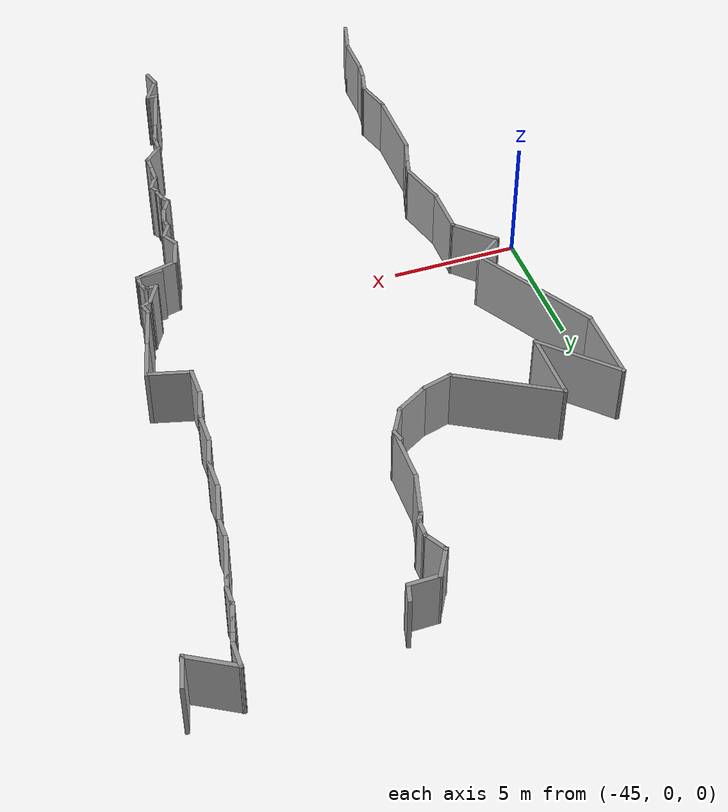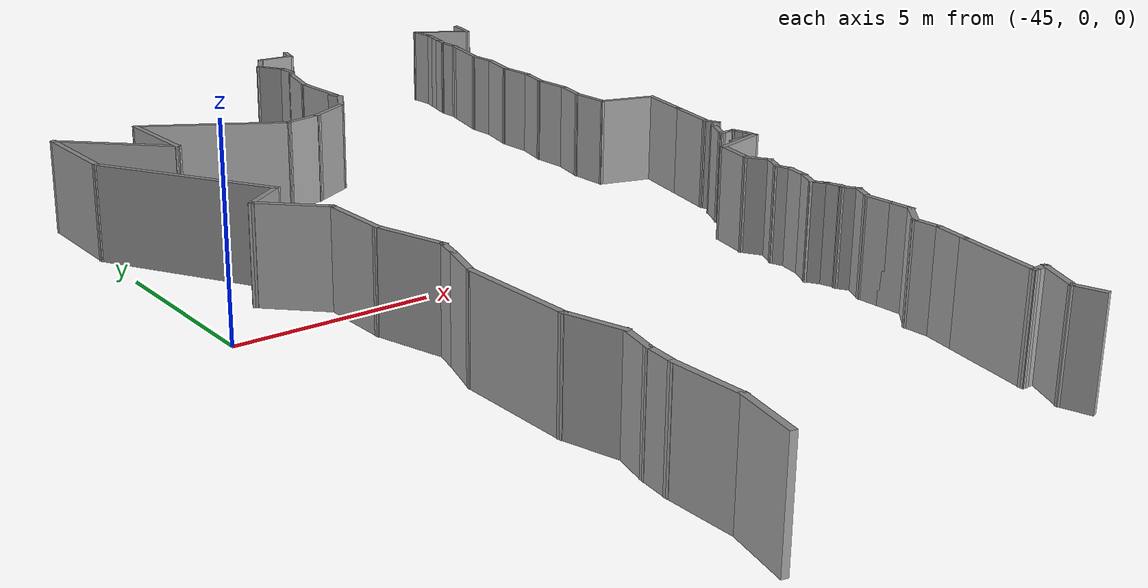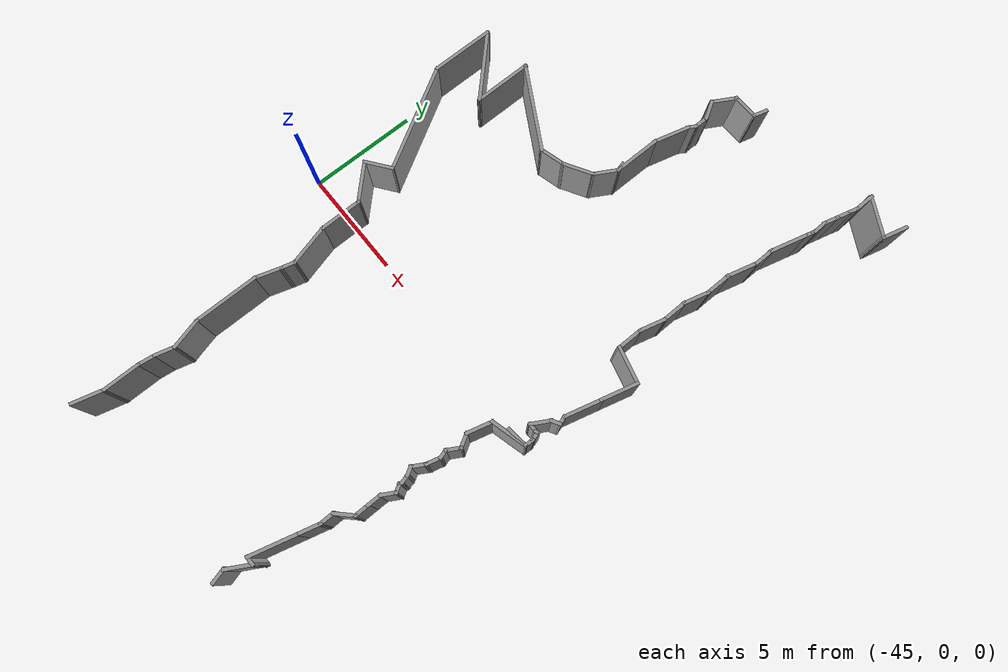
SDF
<sdf version="1.7">
 <model name="office_track1">
  <pose>2.3626 4.43866 0 0 -0 0</pose>
  <link name="Wall_0">
   <collision name="Wall_0_Collision">
    <geometry><box><size>1 0.15 2.5</size></box></geometry>
    <pose>0 0 1.25 0 -0 0</pose>
   </collision>
   <visual name="Wall_0_Visual">
    <pose>0 0 1.25 0 -0 0</pose>
    <geometry><box><size>1 0.15 2.5</size></box></geometry>
    <material>
     <script><uri>file://media/materials/scripts/gazebo.material</uri><name>Gazebo/Grey</name></script>
     <ambient>1 1 1 1</ambient>
    </material>
    <meta><layer>0</layer></meta>
   </visual>
   <pose>-30.9948 12.4778 0 0 -0 -1.5708</pose>
  </link>
  <link name="Wall_10">
   <collision name="Wall_10_Collision">
    <geometry><box><size>1.25 0.15 2.5</size></box></geometry>
    <pose>0 0 1.25 0 -0 0</pose>
   </collision>
   <visual name="Wall_10_Visual">
    <pose>0 0 1.25 0 -0 0</pose>
    <geometry><box><size>1.25 0.15 2.5</size></box></geometry>
    <material>
     <script><uri>file://media/materials/scripts/gazebo.material</uri><name>Gazebo/Grey</name></script>
     <ambient>1 1 1 1</ambient>
    </material>
    <meta><layer>0</layer></meta>
   </visual>
   <pose>-29.2503 12.509 0 0 -0 1.309</pose>
  </link>
  <link name="Wall_12">
   <collision name="Wall_12_Collision">
    <geometry><box><size>1.75 0.15 2.5</size></box></geometry>
    <pose>0 0 1.25 0 -0 0</pose>
   </collision>
   <visual name="Wall_12_Visual">
    <pose>0 0 1.25 0 -0 0</pose>
    <geometry><box><size>1.75 0.15 2.5</size></box></geometry>
    <material>
     <script><uri>file://media/materials/scripts/gazebo.material</uri><name>Gazebo/Grey</name></script>
     <ambient>1 1 1 1</ambient>
    </material>
    <meta><layer>0</layer></meta>
   </visual>
   <pose>-31.7195 8.74818 0 0 -0 -1.8326</pose>
  </link>
  <link name="Wall_2">
   <collision name="Wall_2_Collision">
    <geometry><box><size>0.5 0.15 2.5</size></box></geometry>
    <pose>0 0 1.25 0 -0 0</pose>
   </collision>
   <visual name="Wall_2_Visual">
    <pose>0 0 1.25 0 -0 0</pose>
    <geometry><box><size>0.5 0.15 2.5</size></box></geometry>
    <material>
     <script><uri>file://media/materials/scripts/gazebo.material</uri><name>Gazebo/Grey</name></script>
     <ambient>1 1 1 1</ambient>
    </material>
    <meta><layer>0</layer></meta>
   </visual>
   <pose>-31.0401 11.8837 0 0 -0 -1.8326</pose>
  </link>
  <link name="Wall_22">
   <collision name="Wall_22_Collision">
    <geometry><box><size>1 0.15 2.5</size></box></geometry>
    <pose>0 0 1.25 0 -0 0</pose>
   </collision>
   <visual name="Wall_22_Visual">
    <pose>0 0 1.25 0 -0 0</pose>
    <geometry><box><size>1 0.15 2.5</size></box></geometry>
    <material>
     <script><uri>file://media/materials/scripts/gazebo.material</uri><name>Gazebo/Grey</name></script>
     <ambient>1 1 1 1</ambient>
    </material>
    <meta><layer>0</layer></meta>
   </visual>
   <pose>-31.9265 7.55044 0 0 -0 -1.5708</pose>
  </link>
  <link name="Wall_23">
   <collision name="Wall_23_Collision">
    <geometry><box><size>1.5 0.15 2.5</size></box></geometry>
    <pose>0 0 1.25 0 -0 0</pose>
   </collision>
   <visual name="Wall_23_Visual">
    <pose>0 0 1.25 0 -0 0</pose>
    <geometry><box><size>1.5 0.15 2.5</size></box></geometry>
    <material>
     <script><uri>file://media/materials/scripts/gazebo.material</uri><name>Gazebo/Grey</name></script>
     <ambient>1 1 1 1</ambient>
    </material>
    <meta><layer>0</layer></meta>
   </visual>
   <pose>-32.1012 6.47344 0 0 -0 -1.8326</pose>
  </link>
  <link name="Wall_24">
   <collision name="Wall_24_Collision">
    <geometry><box><size>1.25 0.15 2.5</size></box></geometry>
    <pose>0 0 1.25 0 -0 0</pose>
   </collision>
   <visual name="Wall_24_Visual">
    <pose>0 0 1.25 0 -0 0</pose>
    <geometry><box><size>1.25 0.15 2.5</size></box></geometry>
    <material>
     <script><uri>file://media/materials/scripts/gazebo.material</uri><name>Gazebo/Grey</name></script>
     <ambient>1 1 1 1</ambient>
    </material>
    <meta><layer>0</layer></meta>
   </visual>
   <pose>-32.2759 5.27144 0 0 -0 -1.5708</pose>
  </link>
  <link name="Wall_25">
   <collision name="Wall_25_Collision">
    <geometry><box><size>1.25 0.15 2.5</size></box></geometry>
    <pose>0 0 1.25 0 -0 0</pose>
   </collision>
   <visual name="Wall_25_Visual">
    <pose>0 0 1.25 0 -0 0</pose>
    <geometry><box><size>1.25 0.15 2.5</size></box></geometry>
    <material>
     <script><uri>file://media/materials/scripts/gazebo.material</uri><name>Gazebo/Grey</name></script>
     <ambient>1 1 1 1</ambient>
    </material>
    <meta><layer>0</layer></meta>
   </visual>
   <pose>-32.4183 4.19018 0 0 -0 -1.8326</pose>
  </link>
  <link name="Wall_26">
   <collision name="Wall_26_Collision">
    <geometry><box><size>1.25 0.15 2.5</size></box></geometry>
    <pose>0 0 1.25 0 -0 0</pose>
   </collision>
   <visual name="Wall_26_Visual">
    <pose>0 0 1.25 0 -0 0</pose>
    <geometry><box><size>1.25 0.15 2.5</size></box></geometry>
    <material>
     <script><uri>file://media/materials/scripts/gazebo.material</uri><name>Gazebo/Grey</name></script>
     <ambient>1 1 1 1</ambient>
    </material>
    <meta><layer>0</layer></meta>
   </visual>
   <pose>-32.5606 3.10892 0 0 -0 -1.5708</pose>
  </link>
  <link name="Wall_27">
   <collision name="Wall_27_Collision">
    <geometry><box><size>1.25 0.15 2.5</size></box></geometry>
    <pose>0 0 1.25 0 -0 0</pose>
   </collision>
   <visual name="Wall_27_Visual">
    <pose>0 0 1.25 0 -0 0</pose>
    <geometry><box><size>1.25 0.15 2.5</size></box></geometry>
    <material>
     <script><uri>file://media/materials/scripts/gazebo.material</uri><name>Gazebo/Grey</name></script>
     <ambient>1 1 1 1</ambient>
    </material>
    <meta><layer>0</layer></meta>
   </visual>
   <pose>-32.703 2.02766 0 0 -0 -1.8326</pose>
  </link>
  <link name="Wall_29">
   <collision name="Wall_29_Collision">
    <geometry><box><size>1.25 0.15 2.5</size></box></geometry>
    <pose>0 0 1.25 0 -0 0</pose>
   </collision>
   <visual name="Wall_29_Visual">
    <pose>0 0 1.25 0 -0 0</pose>
    <geometry><box><size>1.25 0.15 2.5</size></box></geometry>
    <material>
     <script><uri>file://media/materials/scripts/gazebo.material</uri><name>Gazebo/Grey</name></script>
     <ambient>1 1 1 1</ambient>
    </material>
    <meta><layer>0</layer></meta>
   </visual>
   <pose>-32.8453 0.9464 0 0 -0 -1.5708</pose>
  </link>
  <link name="Wall_3">
   <collision name="Wall_3_Collision">
    <geometry><box><size>0.75 0.15 2.5</size></box></geometry>
    <pose>0 0 1.25 0 -0 0</pose>
   </collision>
   <visual name="Wall_3_Visual">
    <pose>0 0 1.25 0 -0 0</pose>
    <geometry><box><size>0.75 0.15 2.5</size></box></geometry>
    <material>
     <script><uri>file://media/materials/scripts/gazebo.material</uri><name>Gazebo/Grey</name></script>
     <ambient>1 1 1 1</ambient>
    </material>
    <meta><layer>0</layer></meta>
   </visual>
   <pose>-31.163 11.4249 0 0 -0 -1.8326</pose>
  </link>
  <link name="Wall_30">
   <collision name="Wall_30_Collision">
    <geometry><box><size>1.75 0.15 2.5</size></box></geometry>
    <pose>0 0 1.25 0 -0 0</pose>
   </collision>
   <visual name="Wall_30_Visual">
    <pose>0 0 1.25 0 -0 0</pose>
    <geometry><box><size>1.75 0.15 2.5</size></box></geometry>
    <material>
     <script><uri>file://media/materials/scripts/gazebo.material</uri><name>Gazebo/Grey</name></script>
     <ambient>1 1 1 1</ambient>
    </material>
    <meta><layer>0</layer></meta>
   </visual>
   <pose>-32.0726 0.189345 0 0 -0 -0.261799</pose>
  </link>
  <link name="Wall_31">
   <collision name="Wall_31_Collision">
    <geometry><box><size>1.75 0.15 2.5</size></box></geometry>
    <pose>0 0 1.25 0 -0 0</pose>
   </collision>
   <visual name="Wall_31_Visual">
    <pose>0 0 1.25 0 -0 0</pose>
    <geometry><box><size>1.75 0.15 2.5</size></box></geometry>
    <material>
     <script><uri>file://media/materials/scripts/gazebo.material</uri><name>Gazebo/Grey</name></script>
     <ambient>1 1 1 1</ambient>
    </material>
    <meta><layer>0</layer></meta>
   </visual>
   <pose>-31.5069 -0.790451 0 0 -0 -1.8326</pose>
  </link>
  <link name="Wall_32">
   <collision name="Wall_32_Collision">
    <geometry><box><size>1.75 0.15 2.5</size></box></geometry>
    <pose>0 0 1.25 0 -0 0</pose>
   </collision>
   <visual name="Wall_32_Visual">
    <pose>0 0 1.25 0 -0 0</pose>
    <geometry><box><size>1.75 0.15 2.5</size></box></geometry>
    <material>
     <script><uri>file://media/materials/scripts/gazebo.material</uri><name>Gazebo/Grey</name></script>
     <ambient>1 1 1 1</ambient>
    </material>
    <meta><layer>0</layer></meta>
   </visual>
   <pose>-31.921 -2.33593 0 0 -0 -1.8326</pose>
  </link>
  <link name="Wall_33">
   <collision name="Wall_33_Collision">
    <geometry><box><size>0.5 0.15 2.5</size></box></geometry>
    <pose>0 0 1.25 0 -0 0</pose>
   </collision>
   <visual name="Wall_33_Visual">
    <pose>0 0 1.25 0 -0 0</pose>
    <geometry><box><size>0.5 0.15 2.5</size></box></geometry>
    <material>
     <script><uri>file://media/materials/scripts/gazebo.material</uri><name>Gazebo/Grey</name></script>
     <ambient>1 1 1 1</ambient>
    </material>
    <meta><layer>0</layer></meta>
   </visual>
   <pose>-32.0828 -3.27771 0 0 -0 -1.309</pose>
  </link>
  <link name="Wall_34">
   <collision name="Wall_34_Collision">
    <geometry><box><size>0.5 0.15 2.5</size></box></geometry>
    <pose>0 0 1.25 0 -0 0</pose>
   </collision>
   <visual name="Wall_34_Visual">
    <pose>0 0 1.25 0 -0 0</pose>
    <geometry><box><size>0.5 0.15 2.5</size></box></geometry>
    <material>
     <script><uri>file://media/materials/scripts/gazebo.material</uri><name>Gazebo/Grey</name></script>
     <ambient>1 1 1 1</ambient>
    </material>
    <meta><layer>0</layer></meta>
   </visual>
   <pose>-32.189 -3.53425 0 0 -0 -2.61799</pose>
  </link>
  <link name="Wall_35">
   <collision name="Wall_35_Collision">
    <geometry><box><size>1 0.15 2.5</size></box></geometry>
    <pose>0 0 1.25 0 -0 0</pose>
   </collision>
   <visual name="Wall_35_Visual">
    <pose>0 0 1.25 0 -0 0</pose>
    <geometry><box><size>1 0.15 2.5</size></box></geometry>
    <material>
     <script><uri>file://media/materials/scripts/gazebo.material</uri><name>Gazebo/Grey</name></script>
     <ambient>1 1 1 1</ambient>
    </material>
    <meta><layer>0</layer></meta>
   </visual>
   <pose>-32.5531 -3.98981 0 0 -0 -2.0944</pose>
  </link>
  <link name="Wall_36">
   <collision name="Wall_36_Collision">
    <geometry><box><size>0.5 0.15 2.5</size></box></geometry>
    <pose>0 0 1.25 0 -0 0</pose>
   </collision>
   <visual name="Wall_36_Visual">
    <pose>0 0 1.25 0 -0 0</pose>
    <geometry><box><size>0.5 0.15 2.5</size></box></geometry>
    <material>
     <script><uri>file://media/materials/scripts/gazebo.material</uri><name>Gazebo/Grey</name></script>
     <ambient>1 1 1 1</ambient>
    </material>
    <meta><layer>0</layer></meta>
   </visual>
   <pose>-32.5906 -4.35787 0 0 -0 0</pose>
  </link>
  <link name="Wall_37">
   <collision name="Wall_37_Collision">
    <geometry><box><size>0.25 0.15 2.5</size></box></geometry>
    <pose>0 0 1.25 0 -0 0</pose>
   </collision>
   <visual name="Wall_37_Visual">
    <pose>0 0 1.25 0 -0 0</pose>
    <geometry><box><size>0.25 0.15 2.5</size></box></geometry>
    <material>
     <script><uri>file://media/materials/scripts/gazebo.material</uri><name>Gazebo/Grey</name></script>
     <ambient>1 1 1 1</ambient>
    </material>
    <meta><layer>0</layer></meta>
   </visual>
   <pose>-32.3673 -4.34493 0 0 -0 0.261799</pose>
  </link>
  <link name="Wall_38">
   <collision name="Wall_38_Collision">
    <geometry><box><size>0.5 0.15 2.5</size></box></geometry>
    <pose>0 0 1.25 0 -0 0</pose>
   </collision>
   <visual name="Wall_38_Visual">
    <pose>0 0 1.25 0 -0 0</pose>
    <geometry><box><size>0.5 0.15 2.5</size></box></geometry>
    <material>
     <script><uri>file://media/materials/scripts/gazebo.material</uri><name>Gazebo/Grey</name></script>
     <ambient>1 1 1 1</ambient>
    </material>
    <meta><layer>0</layer></meta>
   </visual>
   <pose>-32.2737 -4.50102 0 0 -0 -1.309</pose>
  </link>
  <link name="Wall_39">
   <collision name="Wall_39_Collision">
    <geometry><box><size>0.5 0.15 2.5</size></box></geometry>
    <pose>0 0 1.25 0 -0 0</pose>
   </collision>
   <visual name="Wall_39_Visual">
    <pose>0 0 1.25 0 -0 0</pose>
    <geometry><box><size>0.5 0.15 2.5</size></box></geometry>
    <material>
     <script><uri>file://media/materials/scripts/gazebo.material</uri><name>Gazebo/Grey</name></script>
     <ambient>1 1 1 1</ambient>
    </material>
    <meta><layer>0</layer></meta>
   </visual>
   <pose>-32.2284 -4.84506 0 0 -0 -1.5708</pose>
  </link>
  <link name="Wall_4">
   <collision name="Wall_4_Collision">
    <geometry><box><size>0.75 0.15 2.5</size></box></geometry>
    <pose>0 0 1.25 0 -0 0</pose>
   </collision>
   <visual name="Wall_4_Visual">
    <pose>0 0 1.25 0 -0 0</pose>
    <geometry><box><size>0.75 0.15 2.5</size></box></geometry>
    <material>
     <script><uri>file://media/materials/scripts/gazebo.material</uri><name>Gazebo/Grey</name></script>
     <ambient>1 1 1 1</ambient>
    </material>
    <meta><layer>0</layer></meta>
   </visual>
   <pose>-31.3183 10.8454 0 0 -0 -1.8326</pose>
  </link>
  <link name="Wall_41">
   <collision name="Wall_41_Collision">
    <geometry><box><size>1.0592 0.15 2.5</size></box></geometry>
    <pose>0 0 1.25 0 -0 0</pose>
   </collision>
   <visual name="Wall_41_Visual">
    <pose>0 0 1.25 0 -0 0</pose>
    <geometry><box><size>1.0592 0.15 2.5</size></box></geometry>
    <material>
     <script><uri>file://media/materials/scripts/gazebo.material</uri><name>Gazebo/Grey</name></script>
     <ambient>1 1 1 1</ambient>
    </material>
    <meta><layer>0</layer></meta>
   </visual>
   <pose>-32.6798 -5.07373 0 0 -0 0.118339</pose>
  </link>
  <link name="Wall_42">
   <collision name="Wall_42_Collision">
    <geometry><box><size>1.75 0.15 2.5</size></box></geometry>
    <pose>0 0 1.25 0 -0 0</pose>
   </collision>
   <visual name="Wall_42_Visual">
    <pose>0 0 1.25 0 -0 0</pose>
    <geometry><box><size>1.75 0.15 2.5</size></box></geometry>
    <material>
     <script><uri>file://media/materials/scripts/gazebo.material</uri><name>Gazebo/Grey</name></script>
     <ambient>1 1 1 1</ambient>
    </material>
    <meta><layer>0</layer></meta>
   </visual>
   <pose>-33.0011 -5.22712 0 0 -0 -2.87979</pose>
  </link>
  <link name="Wall_43">
   <collision name="Wall_43_Collision">
    <geometry><box><size>1.25 0.15 2.5</size></box></geometry>
    <pose>0 0 1.25 0 -0 0</pose>
   </collision>
   <visual name="Wall_43_Visual">
    <pose>0 0 1.25 0 -0 0</pose>
    <geometry><box><size>1.25 0.15 2.5</size></box></geometry>
    <material>
     <script><uri>file://media/materials/scripts/gazebo.material</uri><name>Gazebo/Grey</name></script>
     <ambient>1 1 1 1</ambient>
    </material>
    <meta><layer>0</layer></meta>
   </visual>
   <pose>-33.9162 -5.96543 0 0 -0 -1.8326</pose>
  </link>
  <link name="Wall_44">
   <collision name="Wall_44_Collision">
    <geometry><box><size>0.75 0.15 2.5</size></box></geometry>
    <pose>0 0 1.25 0 -0 0</pose>
   </collision>
   <visual name="Wall_44_Visual">
    <pose>0 0 1.25 0 -0 0</pose>
    <geometry><box><size>0.75 0.15 2.5</size></box></geometry>
    <material>
     <script><uri>file://media/materials/scripts/gazebo.material</uri><name>Gazebo/Grey</name></script>
     <ambient>1 1 1 1</ambient>
    </material>
    <meta><layer>0</layer></meta>
   </visual>
   <pose>-33.9086 -6.7565 0 0 -0 -1.0472</pose>
  </link>
  <link name="Wall_45">
   <collision name="Wall_45_Collision">
    <geometry><box><size>0.75 0.15 2.5</size></box></geometry>
    <pose>0 0 1.25 0 -0 0</pose>
   </collision>
   <visual name="Wall_45_Visual">
    <pose>0 0 1.25 0 -0 0</pose>
    <geometry><box><size>0.75 0.15 2.5</size></box></geometry>
    <material>
     <script><uri>file://media/materials/scripts/gazebo.material</uri><name>Gazebo/Grey</name></script>
     <ambient>1 1 1 1</ambient>
    </material>
    <meta><layer>0</layer></meta>
   </visual>
   <pose>-33.9086 -7.27611 0 0 -0 -2.0944</pose>
  </link>
  <link name="Wall_46">
   <collision name="Wall_46_Collision">
    <geometry><box><size>0.5 0.15 2.5</size></box></geometry>
    <pose>0 0 1.25 0 -0 0</pose>
   </collision>
   <visual name="Wall_46_Visual">
    <pose>0 0 1.25 0 -0 0</pose>
    <geometry><box><size>0.5 0.15 2.5</size></box></geometry>
    <material>
     <script><uri>file://media/materials/scripts/gazebo.material</uri><name>Gazebo/Grey</name></script>
     <ambient>1 1 1 1</ambient>
    </material>
    <meta><layer>0</layer></meta>
   </visual>
   <pose>-34.0133 -7.70496 0 0 -0 -1.309</pose>
  </link>
  <link name="Wall_47">
   <collision name="Wall_47_Collision">
    <geometry><box><size>0.75 0.15 2.5</size></box></geometry>
    <pose>0 0 1.25 0 -0 0</pose>
   </collision>
   <visual name="Wall_47_Visual">
    <pose>0 0 1.25 0 -0 0</pose>
    <geometry><box><size>0.75 0.15 2.5</size></box></geometry>
    <material>
     <script><uri>file://media/materials/scripts/gazebo.material</uri><name>Gazebo/Grey</name></script>
     <ambient>1 1 1 1</ambient>
    </material>
    <meta><layer>0</layer></meta>
   </visual>
   <pose>-34.0456 -8.16377 0 0 -0 -1.8326</pose>
  </link>
  <link name="Wall_48">
   <collision name="Wall_48_Collision">
    <geometry><box><size>0.75 0.15 2.5</size></box></geometry>
    <pose>0 0 1.25 0 -0 0</pose>
   </collision>
   <visual name="Wall_48_Visual">
    <pose>0 0 1.25 0 -0 0</pose>
    <geometry><box><size>0.75 0.15 2.5</size></box></geometry>
    <material>
     <script><uri>file://media/materials/scripts/gazebo.material</uri><name>Gazebo/Grey</name></script>
     <ambient>1 1 1 1</ambient>
    </material>
    <meta><layer>0</layer></meta>
   </visual>
   <pose>-34.2733 -8.71336 0 0 -0 -2.0944</pose>
  </link>
  <link name="Wall_49">
   <collision name="Wall_49_Collision">
    <geometry><box><size>0.5 0.15 2.5</size></box></geometry>
    <pose>0 0 1.25 0 -0 0</pose>
   </collision>
   <visual name="Wall_49_Visual">
    <pose>0 0 1.25 0 -0 0</pose>
    <geometry><box><size>0.5 0.15 2.5</size></box></geometry>
    <material>
     <script><uri>file://media/materials/scripts/gazebo.material</uri><name>Gazebo/Grey</name></script>
     <ambient>1 1 1 1</ambient>
    </material>
    <meta><layer>0</layer></meta>
   </visual>
   <pose>-34.3358 -9.12472 0 0 -0 -1.0472</pose>
  </link>
  <link name="Wall_5">
   <collision name="Wall_5_Collision">
    <geometry><box><size>0.75 0.15 2.5</size></box></geometry>
    <pose>0 0 1.25 0 -0 0</pose>
   </collision>
   <visual name="Wall_5_Visual">
    <pose>0 0 1.25 0 -0 0</pose>
    <geometry><box><size>0.75 0.15 2.5</size></box></geometry>
    <material>
     <script><uri>file://media/materials/scripts/gazebo.material</uri><name>Gazebo/Grey</name></script>
     <ambient>1 1 1 1</ambient>
    </material>
    <meta><layer>0</layer></meta>
   </visual>
   <pose>-31.3959 10.2556 0 0 -0 -1.5708</pose>
  </link>
  <link name="Wall_50">
   <collision name="Wall_50_Collision">
    <geometry><box><size>0.5 0.15 2.5</size></box></geometry>
    <pose>0 0 1.25 0 -0 0</pose>
   </collision>
   <visual name="Wall_50_Visual">
    <pose>0 0 1.25 0 -0 0</pose>
    <geometry><box><size>0.5 0.15 2.5</size></box></geometry>
    <material>
     <script><uri>file://media/materials/scripts/gazebo.material</uri><name>Gazebo/Grey</name></script>
     <ambient>1 1 1 1</ambient>
    </material>
    <meta><layer>0</layer></meta>
   </visual>
   <pose>-34.203 -9.44531 0 0 -0 -1.309</pose>
  </link>
  <link name="Wall_505">
   <collision name="Wall_505_Collision">
    <geometry><box><size>1.5 0.15 2.5</size></box></geometry>
    <pose>0 0 1.25 0 -0 0</pose>
   </collision>
   <visual name="Wall_505_Visual">
    <pose>0 0 1.25 0 -0 0</pose>
    <geometry><box><size>1.5 0.15 2.5</size></box></geometry>
    <material>
     <script><uri>file://media/materials/scripts/gazebo.material</uri><name>Gazebo/Grey</name></script>
     <ambient>1 1 1 1</ambient>
    </material>
    <meta><layer>0</layer></meta>
   </visual>
   <pose>-44.6711 -17.1683 0 0 -0 1.309</pose>
  </link>
  <link name="Wall_506">
   <collision name="Wall_506_Collision">
    <geometry><box><size>1.75 0.15 2.5</size></box></geometry>
    <pose>0 0 1.25 0 -0 0</pose>
   </collision>
   <visual name="Wall_506_Visual">
    <pose>0 0 1.25 0 -0 0</pose>
    <geometry><box><size>1.75 0.15 2.5</size></box></geometry>
    <material>
     <script><uri>file://media/materials/scripts/gazebo.material</uri><name>Gazebo/Grey</name></script>
     <ambient>1 1 1 1</ambient>
    </material>
    <meta><layer>0</layer></meta>
   </visual>
   <pose>-44.4964 -15.7163 0 0 -0 1.5708</pose>
  </link>
  <link name="Wall_508">
   <collision name="Wall_508_Collision">
    <geometry><box><size>3 0.15 2.5</size></box></geometry>
    <pose>0 0 1.25 0 -0 0</pose>
   </collision>
   <visual name="Wall_508_Visual">
    <pose>0 0 1.25 0 -0 0</pose>
    <geometry><box><size>3 0.15 2.5</size></box></geometry>
    <material>
     <script><uri>file://media/materials/scripts/gazebo.material</uri><name>Gazebo/Grey</name></script>
     <ambient>1 1 1 1</ambient>
    </material>
    <meta><layer>0</layer></meta>
   </visual>
   <pose>-44.5278 -10.6583 0 0 -0 -1.5708</pose>
  </link>
  <link name="Wall_509">
   <collision name="Wall_509_Collision">
    <geometry><box><size>1.5 0.15 2.5</size></box></geometry>
    <pose>0 0 1.25 0 -0 0</pose>
   </collision>
   <visual name="Wall_509_Visual">
    <pose>0 0 1.25 0 -0 0</pose>
    <geometry><box><size>1.5 0.15 2.5</size></box></geometry>
    <material>
     <script><uri>file://media/materials/scripts/gazebo.material</uri><name>Gazebo/Grey</name></script>
     <ambient>1 1 1 1</ambient>
    </material>
    <meta><layer>0</layer></meta>
   </visual>
   <pose>-44.3531 -12.7353 0 0 -0 -1.309</pose>
  </link>
  <link name="Wall_51">
   <collision name="Wall_51_Collision">
    <geometry><box><size>0.25 0.15 2.5</size></box></geometry>
    <pose>0 0 1.25 0 -0 0</pose>
   </collision>
   <visual name="Wall_51_Visual">
    <pose>0 0 1.25 0 -0 0</pose>
    <geometry><box><size>0.25 0.15 2.5</size></box></geometry>
    <material>
     <script><uri>file://media/materials/scripts/gazebo.material</uri><name>Gazebo/Grey</name></script>
     <ambient>1 1 1 1</ambient>
    </material>
    <meta><layer>0</layer></meta>
   </visual>
   <pose>-34.1706 -9.66264 0 0 -0 -1.8326</pose>
  </link>
  <link name="Wall_510">
   <collision name="Wall_510_Collision">
    <geometry><box><size>1 0.15 2.5</size></box></geometry>
    <pose>0 0 1.25 0 -0 0</pose>
   </collision>
   <visual name="Wall_510_Visual">
    <pose>0 0 1.25 0 -0 0</pose>
    <geometry><box><size>1 0.15 2.5</size></box></geometry>
    <material>
     <script><uri>file://media/materials/scripts/gazebo.material</uri><name>Gazebo/Grey</name></script>
     <ambient>1 1 1 1</ambient>
    </material>
    <meta><layer>0</layer></meta>
   </visual>
   <pose>-44.2883 -13.7978 0 0 -0 -1.8326</pose>
  </link>
  <link name="Wall_511">
   <collision name="Wall_511_Collision">
    <geometry><box><size>0.864728 0.15 2.5</size></box></geometry>
    <pose>0 0 1.25 0 -0 0</pose>
   </collision>
   <visual name="Wall_511_Visual">
    <pose>0 0 1.25 0 -0 0</pose>
    <geometry><box><size>0.864728 0.15 2.5</size></box></geometry>
    <material>
     <script><uri>file://media/materials/scripts/gazebo.material</uri><name>Gazebo/Grey</name></script>
     <ambient>1 1 1 1</ambient>
    </material>
    <meta><layer>0</layer></meta>
   </visual>
   <pose>-44.4474 -14.5623 0 0 -0 -1.70846</pose>
  </link>
  <link name="Wall_513">
   <collision name="Wall_513_Collision">
    <geometry><box><size>2 0.15 2.5</size></box></geometry>
    <pose>0 0 1.25 0 -0 0</pose>
   </collision>
   <visual name="Wall_513_Visual">
    <pose>0 0 1.25 0 -0 0</pose>
    <geometry><box><size>2 0.15 2.5</size></box></geometry>
    <material>
     <script><uri>file://media/materials/scripts/gazebo.material</uri><name>Gazebo/Grey</name></script>
     <ambient>1 1 1 1</ambient>
    </material>
    <meta><layer>0</layer></meta>
   </visual>
   <pose>-45.1697 -3.28807 0 0 -0 -0.785398</pose>
  </link>
  <link name="Wall_514">
   <collision name="Wall_514_Collision">
    <geometry><box><size>2 0.15 2.5</size></box></geometry>
    <pose>0 0 1.25 0 -0 0</pose>
   </collision>
   <visual name="Wall_514_Visual">
    <pose>0 0 1.25 0 -0 0</pose>
    <geometry><box><size>2 0.15 2.5</size></box></geometry>
    <material>
     <script><uri>file://media/materials/scripts/gazebo.material</uri><name>Gazebo/Grey</name></script>
     <ambient>1 1 1 1</ambient>
    </material>
    <meta><layer>0</layer></meta>
   </visual>
   <pose>-44.5157 -4.86714 0 0 -0 -1.5708</pose>
  </link>
  <link name="Wall_515">
   <collision name="Wall_515_Collision">
    <geometry><box><size>2 0.15 2.5</size></box></geometry>
    <pose>0 0 1.25 0 -0 0</pose>
   </collision>
   <visual name="Wall_515_Visual">
    <pose>0 0 1.25 0 -0 0</pose>
    <geometry><box><size>2 0.15 2.5</size></box></geometry>
    <material>
     <script><uri>file://media/materials/scripts/gazebo.material</uri><name>Gazebo/Grey</name></script>
     <ambient>1 1 1 1</ambient>
    </material>
    <meta><layer>0</layer></meta>
   </visual>
   <pose>-44.2763 -6.68563 0 0 -0 -1.309</pose>
  </link>
  <link name="Wall_516">
   <collision name="Wall_516_Collision">
    <geometry><box><size>0.75 0.15 2.5</size></box></geometry>
    <pose>0 0 1.25 0 -0 0</pose>
   </collision>
   <visual name="Wall_516_Visual">
    <pose>0 0 1.25 0 -0 0</pose>
    <geometry><box><size>0.75 0.15 2.5</size></box></geometry>
    <material>
     <script><uri>file://media/materials/scripts/gazebo.material</uri><name>Gazebo/Grey</name></script>
     <ambient>1 1 1 1</ambient>
    </material>
    <meta><layer>0</layer></meta>
   </visual>
   <pose>-44.1145 -7.86889 0 0 -0 -1.8326</pose>
  </link>
  <link name="Wall_517">
   <collision name="Wall_517_Collision">
    <geometry><box><size>1.2758 0.15 2.5</size></box></geometry>
    <pose>0 0 1.25 0 -0 0</pose>
   </collision>
   <visual name="Wall_517_Visual">
    <pose>0 0 1.25 0 -0 0</pose>
    <geometry><box><size>1.2758 0.15 2.5</size></box></geometry>
    <material>
     <script><uri>file://media/materials/scripts/gazebo.material</uri><name>Gazebo/Grey</name></script>
     <ambient>1 1 1 1</ambient>
    </material>
    <meta><layer>0</layer></meta>
   </visual>
   <pose>-44.3599 -8.69597 0 0 -0 -1.87352</pose>
  </link>
  <link name="Wall_519">
   <collision name="Wall_519_Collision">
    <geometry><box><size>3 0.15 2.5</size></box></geometry>
    <pose>0 0 1.25 0 -0 0</pose>
   </collision>
   <visual name="Wall_519_Visual">
    <pose>0 0 1.25 0 -0 0</pose>
    <geometry><box><size>3 0.15 2.5</size></box></geometry>
    <material>
     <script><uri>file://media/materials/scripts/gazebo.material</uri><name>Gazebo/Grey</name></script>
     <ambient>1 1 1 1</ambient>
    </material>
    <meta><layer>0</layer></meta>
   </visual>
   <pose>-47.3747 3.95519 0 0 -0 -1.5708</pose>
  </link>
  <link name="Wall_52">
   <collision name="Wall_52_Collision">
    <geometry><box><size>0.5 0.15 2.5</size></box></geometry>
    <pose>0 0 1.25 0 -0 0</pose>
   </collision>
   <visual name="Wall_52_Visual">
    <pose>0 0 1.25 0 -0 0</pose>
    <geometry><box><size>0.5 0.15 2.5</size></box></geometry>
    <material>
     <script><uri>file://media/materials/scripts/gazebo.material</uri><name>Gazebo/Grey</name></script>
     <ambient>1 1 1 1</ambient>
    </material>
    <meta><layer>0</layer></meta>
   </visual>
   <pose>-34.0961 -9.86249 0 0 -0 -1.0472</pose>
  </link>
  <link name="Wall_520">
   <collision name="Wall_520_Collision">
    <geometry><box><size>5.25 0.15 2.5</size></box></geometry>
    <pose>0 0 1.25 0 -0 0</pose>
   </collision>
   <visual name="Wall_520_Visual">
    <pose>0 0 1.25 0 -0 0</pose>
    <geometry><box><size>5.25 0.15 2.5</size></box></geometry>
    <material>
     <script><uri>file://media/materials/scripts/gazebo.material</uri><name>Gazebo/Grey</name></script>
     <ambient>1 1 1 1</ambient>
    </material>
    <meta><layer>0</layer></meta>
   </visual>
   <pose>-46.0997 0.321827 0 0 -0 -1.0472</pose>
  </link>
  <link name="Wall_521">
   <collision name="Wall_521_Collision">
    <geometry><box><size>1.39776 0.15 2.5</size></box></geometry>
    <pose>0 0 1.25 0 -0 0</pose>
   </collision>
   <visual name="Wall_521_Visual">
    <pose>0 0 1.25 0 -0 0</pose>
    <geometry><box><size>1.39776 0.15 2.5</size></box></geometry>
    <material>
     <script><uri>file://media/materials/scripts/gazebo.material</uri><name>Gazebo/Grey</name></script>
     <ambient>1 1 1 1</ambient>
    </material>
    <meta><layer>0</layer></meta>
   </visual>
   <pose>-45.3243 -2.26027 0 0 -0 -2.49929</pose>
  </link>
  <link name="Wall_523">
   <collision name="Wall_523_Collision">
    <geometry><box><size>3.5 0.15 2.5</size></box></geometry>
    <pose>0 0 1.25 0 -0 0</pose>
   </collision>
   <visual name="Wall_523_Visual">
    <pose>0 0 1.25 0 -0 0</pose>
    <geometry><box><size>3.5 0.15 2.5</size></box></geometry>
    <material>
     <script><uri>file://media/materials/scripts/gazebo.material</uri><name>Gazebo/Grey</name></script>
     <ambient>1 1 1 1</ambient>
    </material>
    <meta><layer>0</layer></meta>
   </visual>
   <pose>-46.1903 4.19579 0 0 -0 -0.785398</pose>
  </link>
  <link name="Wall_524">
   <collision name="Wall_524_Collision">
    <geometry><box><size>2.75 0.15 2.5</size></box></geometry>
    <pose>0 0 1.25 0 -0 0</pose>
   </collision>
   <visual name="Wall_524_Visual">
    <pose>0 0 1.25 0 -0 0</pose>
    <geometry><box><size>2.75 0.15 2.5</size></box></geometry>
    <material>
     <script><uri>file://media/materials/scripts/gazebo.material</uri><name>Gazebo/Grey</name></script>
     <ambient>1 1 1 1</ambient>
    </material>
    <meta><layer>0</layer></meta>
   </visual>
   <pose>-45.0059 4.31138 0 0 -0 1.5708</pose>
  </link>
  <link name="Wall_525">
   <collision name="Wall_525_Collision">
    <geometry><box><size>4.25 0.15 2.5</size></box></geometry>
    <pose>0 0 1.25 0 -0 0</pose>
   </collision>
   <visual name="Wall_525_Visual">
    <pose>0 0 1.25 0 -0 0</pose>
    <geometry><box><size>4.25 0.15 2.5</size></box></geometry>
    <material>
     <script><uri>file://media/materials/scripts/gazebo.material</uri><name>Gazebo/Grey</name></script>
     <ambient>1 1 1 1</ambient>
    </material>
    <meta><layer>0</layer></meta>
   </visual>
   <pose>-43.2305 4.58638 0 0 -0 -0.523599</pose>
  </link>
  <link name="Wall_526">
   <collision name="Wall_526_Collision">
    <geometry><box><size>1.25 0.15 2.5</size></box></geometry>
    <pose>0 0 1.25 0 -0 0</pose>
   </collision>
   <visual name="Wall_526_Visual">
    <pose>0 0 1.25 0 -0 0</pose>
    <geometry><box><size>1.25 0.15 2.5</size></box></geometry>
    <material>
     <script><uri>file://media/materials/scripts/gazebo.material</uri><name>Gazebo/Grey</name></script>
     <ambient>1 1 1 1</ambient>
    </material>
    <meta><layer>0</layer></meta>
   </visual>
   <pose>-40.9239 3.70373 0 0 -0 0.261799</pose>
  </link>
  <link name="Wall_527">
   <collision name="Wall_527_Collision">
    <geometry><box><size>1.5 0.15 2.5</size></box></geometry>
    <pose>0 0 1.25 0 -0 0</pose>
   </collision>
   <visual name="Wall_527_Visual">
    <pose>0 0 1.25 0 -0 0</pose>
    <geometry><box><size>1.5 0.15 2.5</size></box></geometry>
    <material>
     <script><uri>file://media/materials/scripts/gazebo.material</uri><name>Gazebo/Grey</name></script>
     <ambient>1 1 1 1</ambient>
    </material>
    <meta><layer>0</layer></meta>
   </visual>
   <pose>-39.8081 4.18358 0 0 -0 0.523599</pose>
  </link>
  <link name="Wall_528">
   <collision name="Wall_528_Collision">
    <geometry><box><size>1.25 0.15 2.5</size></box></geometry>
    <pose>0 0 1.25 0 -0 0</pose>
   </collision>
   <visual name="Wall_528_Visual">
    <pose>0 0 1.25 0 -0 0</pose>
    <geometry><box><size>1.25 0.15 2.5</size></box></geometry>
    <material>
     <script><uri>file://media/materials/scripts/gazebo.material</uri><name>Gazebo/Grey</name></script>
     <ambient>1 1 1 1</ambient>
    </material>
    <meta><layer>0</layer></meta>
   </visual>
   <pose>-38.9485 4.9974 0 0 -0 1.0472</pose>
  </link>
  <link name="Wall_529">
   <collision name="Wall_529_Collision">
    <geometry><box><size>0.5 0.15 2.5</size></box></geometry>
    <pose>0 0 1.25 0 -0 0</pose>
   </collision>
   <visual name="Wall_529_Visual">
    <pose>0 0 1.25 0 -0 0</pose>
    <geometry><box><size>0.5 0.15 2.5</size></box></geometry>
    <material>
     <script><uri>file://media/materials/scripts/gazebo.material</uri><name>Gazebo/Grey</name></script>
     <ambient>1 1 1 1</ambient>
    </material>
    <meta><layer>0</layer></meta>
   </visual>
   <pose>-38.7188 5.64275 0 0 -0 1.8326</pose>
  </link>
  <link name="Wall_531">
   <collision name="Wall_531_Collision">
    <geometry><box><size>2.25 0.15 2.5</size></box></geometry>
    <pose>0 0 1.25 0 -0 0</pose>
   </collision>
   <visual name="Wall_531_Visual">
    <pose>0 0 1.25 0 -0 0</pose>
    <geometry><box><size>2.25 0.15 2.5</size></box></geometry>
    <material>
     <script><uri>file://media/materials/scripts/gazebo.material</uri><name>Gazebo/Grey</name></script>
     <ambient>1 1 1 1</ambient>
    </material>
    <meta><layer>0</layer></meta>
   </visual>
   <pose>-38.6735 6.52371 0 0 -0 1.5708</pose>
  </link>
  <link name="Wall_532">
   <collision name="Wall_532_Collision">
    <geometry><box><size>1.75 0.15 2.5</size></box></geometry>
    <pose>0 0 1.25 0 -0 0</pose>
   </collision>
   <visual name="Wall_532_Visual">
    <pose>0 0 1.25 0 -0 0</pose>
    <geometry><box><size>1.75 0.15 2.5</size></box></geometry>
    <material>
     <script><uri>file://media/materials/scripts/gazebo.material</uri><name>Gazebo/Grey</name></script>
     <ambient>1 1 1 1</ambient>
    </material>
    <meta><layer>0</layer></meta>
   </visual>
   <pose>-38.4665 8.34645 0 0 -0 1.309</pose>
  </link>
  <link name="Wall_533">
   <collision name="Wall_533_Collision">
    <geometry><box><size>0.5 0.15 2.5</size></box></geometry>
    <pose>0 0 1.25 0 -0 0</pose>
   </collision>
   <visual name="Wall_533_Visual">
    <pose>0 0 1.25 0 -0 0</pose>
    <geometry><box><size>0.5 0.15 2.5</size></box></geometry>
    <material>
     <script><uri>file://media/materials/scripts/gazebo.material</uri><name>Gazebo/Grey</name></script>
     <ambient>1 1 1 1</ambient>
    </material>
    <meta><layer>0</layer></meta>
   </visual>
   <pose>-38.1719 9.27075 0 0 -0 1.0472</pose>
  </link>
  <link name="Wall_534">
   <collision name="Wall_534_Collision">
    <geometry><box><size>0.75 0.15 2.5</size></box></geometry>
    <pose>0 0 1.25 0 -0 0</pose>
   </collision>
   <visual name="Wall_534_Visual">
    <pose>0 0 1.25 0 -0 0</pose>
    <geometry><box><size>0.75 0.15 2.5</size></box></geometry>
    <material>
     <script><uri>file://media/materials/scripts/gazebo.material</uri><name>Gazebo/Grey</name></script>
     <ambient>1 1 1 1</ambient>
    </material>
    <meta><layer>0</layer></meta>
   </visual>
   <pose>-38.0844 9.7223 0 0 -0 1.5708</pose>
  </link>
  <link name="Wall_535">
   <collision name="Wall_535_Collision">
    <geometry><box><size>1 0.15 2.5</size></box></geometry>
    <pose>0 0 1.25 0 -0 0</pose>
   </collision>
   <visual name="Wall_535_Visual">
    <pose>0 0 1.25 0 -0 0</pose>
    <geometry><box><size>1 0.15 2.5</size></box></geometry>
    <material>
     <script><uri>file://media/materials/scripts/gazebo.material</uri><name>Gazebo/Grey</name></script>
     <ambient>1 1 1 1</ambient>
    </material>
    <meta><layer>0</layer></meta>
   </visual>
   <pose>-38.2969 10.3904 0 0 -0 2.0944</pose>
  </link>
  <link name="Wall_536">
   <collision name="Wall_536_Collision">
    <geometry><box><size>1.25 0.15 2.5</size></box></geometry>
    <pose>0 0 1.25 0 -0 0</pose>
   </collision>
   <visual name="Wall_536_Visual">
    <pose>0 0 1.25 0 -0 0</pose>
    <geometry><box><size>1.25 0.15 2.5</size></box></geometry>
    <material>
     <script><uri>file://media/materials/scripts/gazebo.material</uri><name>Gazebo/Grey</name></script>
     <ambient>1 1 1 1</ambient>
    </material>
    <meta><layer>0</layer></meta>
   </visual>
   <pose>-38.2344 11.2347 0 0 -0 1.0472</pose>
  </link>
  <link name="Wall_537">
   <collision name="Wall_537_Collision">
    <geometry><box><size>1.25 0.15 2.5</size></box></geometry>
    <pose>0 0 1.25 0 -0 0</pose>
   </collision>
   <visual name="Wall_537_Visual">
    <pose>0 0 1.25 0 -0 0</pose>
    <geometry><box><size>1.25 0.15 2.5</size></box></geometry>
    <material>
     <script><uri>file://media/materials/scripts/gazebo.material</uri><name>Gazebo/Grey</name></script>
     <ambient>1 1 1 1</ambient>
    </material>
    <meta><layer>0</layer></meta>
   </visual>
   <pose>-37.4094 11.7111 0 0 -0 0</pose>
  </link>
  <link name="Wall_538">
   <collision name="Wall_538_Collision">
    <geometry><box><size>0.75 0.15 2.5</size></box></geometry>
    <pose>0 0 1.25 0 -0 0</pose>
   </collision>
   <visual name="Wall_538_Visual">
    <pose>0 0 1.25 0 -0 0</pose>
    <geometry><box><size>0.75 0.15 2.5</size></box></geometry>
    <material>
     <script><uri>file://media/materials/scripts/gazebo.material</uri><name>Gazebo/Grey</name></script>
     <ambient>1 1 1 1</ambient>
    </material>
    <meta><layer>0</layer></meta>
   </visual>
   <pose>-36.7818 12.0008 0 0 -0 1.309</pose>
  </link>
  <link name="Wall_54">
   <collision name="Wall_54_Collision">
    <geometry><box><size>0.75 0.15 2.5</size></box></geometry>
    <pose>0 0 1.25 0 -0 0</pose>
   </collision>
   <visual name="Wall_54_Visual">
    <pose>0 0 1.25 0 -0 0</pose>
    <geometry><box><size>0.75 0.15 2.5</size></box></geometry>
    <material>
     <script><uri>file://media/materials/scripts/gazebo.material</uri><name>Gazebo/Grey</name></script>
     <ambient>1 1 1 1</ambient>
    </material>
    <meta><layer>0</layer></meta>
   </visual>
   <pose>-34.1586 -10.2739 0 0 -0 -2.0944</pose>
  </link>
  <link name="Wall_55">
   <collision name="Wall_55_Collision">
    <geometry><box><size>0.75 0.15 2.5</size></box></geometry>
    <pose>0 0 1.25 0 -0 0</pose>
   </collision>
   <visual name="Wall_55_Visual">
    <pose>0 0 1.25 0 -0 0</pose>
    <geometry><box><size>0.75 0.15 2.5</size></box></geometry>
    <material>
     <script><uri>file://media/materials/scripts/gazebo.material</uri><name>Gazebo/Grey</name></script>
     <ambient>1 1 1 1</ambient>
    </material>
    <meta><layer>0</layer></meta>
   </visual>
   <pose>-34.3086 -10.8337 0 0 -0 -1.5708</pose>
  </link>
  <link name="Wall_56">
   <collision name="Wall_56_Collision">
    <geometry><box><size>0.75 0.15 2.5</size></box></geometry>
    <pose>0 0 1.25 0 -0 0</pose>
   </collision>
   <visual name="Wall_56_Visual">
    <pose>0 0 1.25 0 -0 0</pose>
    <geometry><box><size>0.75 0.15 2.5</size></box></geometry>
    <material>
     <script><uri>file://media/materials/scripts/gazebo.material</uri><name>Gazebo/Grey</name></script>
     <ambient>1 1 1 1</ambient>
    </material>
    <meta><layer>0</layer></meta>
   </visual>
   <pose>-34.3086 -11.4337 0 0 -0 -1.5708</pose>
  </link>
  <link name="Wall_57">
   <collision name="Wall_57_Collision">
    <geometry><box><size>1 0.15 2.5</size></box></geometry>
    <pose>0 0 1.25 0 -0 0</pose>
   </collision>
   <visual name="Wall_57_Visual">
    <pose>0 0 1.25 0 -0 0</pose>
    <geometry><box><size>1 0.15 2.5</size></box></geometry>
    <material>
     <script><uri>file://media/materials/scripts/gazebo.material</uri><name>Gazebo/Grey</name></script>
     <ambient>1 1 1 1</ambient>
    </material>
    <meta><layer>0</layer></meta>
   </visual>
   <pose>-34.6091 -12.0342 0 0 -0 -2.35619</pose>
  </link>
  <link name="Wall_58">
   <collision name="Wall_58_Collision">
    <geometry><box><size>0.75 0.15 2.5</size></box></geometry>
    <pose>0 0 1.25 0 -0 0</pose>
   </collision>
   <visual name="Wall_58_Visual">
    <pose>0 0 1.25 0 -0 0</pose>
    <geometry><box><size>0.75 0.15 2.5</size></box></geometry>
    <material>
     <script><uri>file://media/materials/scripts/gazebo.material</uri><name>Gazebo/Grey</name></script>
     <ambient>1 1 1 1</ambient>
    </material>
    <meta><layer>0</layer></meta>
   </visual>
   <pose>-34.9096 -12.6347 0 0 -0 -1.5708</pose>
  </link>
  <link name="Wall_59">
   <collision name="Wall_59_Collision">
    <geometry><box><size>1 0.15 2.5</size></box></geometry>
    <pose>0 0 1.25 0 -0 0</pose>
   </collision>
   <visual name="Wall_59_Visual">
    <pose>0 0 1.25 0 -0 0</pose>
    <geometry><box><size>1 0.15 2.5</size></box></geometry>
    <material>
     <script><uri>file://media/materials/scripts/gazebo.material</uri><name>Gazebo/Grey</name></script>
     <ambient>1 1 1 1</ambient>
    </material>
    <meta><layer>0</layer></meta>
   </visual>
   <pose>-35.0196 -13.3452 0 0 -0 -1.8326</pose>
  </link>
  <link name="Wall_6">
   <collision name="Wall_6_Collision">
    <geometry><box><size>0.25 0.15 2.5</size></box></geometry>
    <pose>0 0 1.25 0 -0 0</pose>
   </collision>
   <visual name="Wall_6_Visual">
    <pose>0 0 1.25 0 -0 0</pose>
    <geometry><box><size>0.25 0.15 2.5</size></box></geometry>
    <material>
     <script><uri>file://media/materials/scripts/gazebo.material</uri><name>Gazebo/Grey</name></script>
     <ambient>1 1 1 1</ambient>
    </material>
    <meta><layer>0</layer></meta>
   </visual>
   <pose>-31.4089 9.90729 0 0 -0 -1.8326</pose>
  </link>
  <link name="Wall_60">
   <collision name="Wall_60_Collision">
    <geometry><box><size>2.25 0.15 2.5</size></box></geometry>
    <pose>0 0 1.25 0 -0 0</pose>
   </collision>
   <visual name="Wall_60_Visual">
    <pose>0 0 1.25 0 -0 0</pose>
    <geometry><box><size>2.25 0.15 2.5</size></box></geometry>
    <material>
     <script><uri>file://media/materials/scripts/gazebo.material</uri><name>Gazebo/Grey</name></script>
     <ambient>1 1 1 1</ambient>
    </material>
    <meta><layer>0</layer></meta>
   </visual>
   <pose>-35.4014 -14.77 0 0 -0 -1.8326</pose>
  </link>
  <link name="Wall_61">
   <collision name="Wall_61_Collision">
    <geometry><box><size>0.5 0.15 2.5</size></box></geometry>
    <pose>0 0 1.25 0 -0 0</pose>
   </collision>
   <visual name="Wall_61_Visual">
    <pose>0 0 1.25 0 -0 0</pose>
    <geometry><box><size>0.5 0.15 2.5</size></box></geometry>
    <material>
     <script><uri>file://media/materials/scripts/gazebo.material</uri><name>Gazebo/Grey</name></script>
     <ambient>1 1 1 1</ambient>
    </material>
    <meta><layer>0</layer></meta>
   </visual>
   <pose>-35.4981 -15.7842 0 0 -0 0</pose>
  </link>
  <link name="Wall_62">
   <collision name="Wall_62_Collision">
    <geometry><box><size>1.25 0.15 2.5</size></box></geometry>
    <pose>0 0 1.25 0 -0 0</pose>
   </collision>
   <visual name="Wall_62_Visual">
    <pose>0 0 1.25 0 -0 0</pose>
    <geometry><box><size>1.25 0.15 2.5</size></box></geometry>
    <material>
     <script><uri>file://media/materials/scripts/gazebo.material</uri><name>Gazebo/Grey</name></script>
     <ambient>1 1 1 1</ambient>
    </material>
    <meta><layer>0</layer></meta>
   </visual>
   <pose>-35.5981 -16.2605 0 0 -0 -2.0944</pose>
  </link>
  <link name="Wall_63">
   <collision name="Wall_63_Collision">
    <geometry><box><size>0.75 0.15 2.5</size></box></geometry>
    <pose>0 0 1.25 0 -0 0</pose>
   </collision>
   <visual name="Wall_63_Visual">
    <pose>0 0 1.25 0 -0 0</pose>
    <geometry><box><size>0.75 0.15 2.5</size></box></geometry>
    <material>
     <script><uri>file://media/materials/scripts/gazebo.material</uri><name>Gazebo/Grey</name></script>
     <ambient>1 1 1 1</ambient>
    </material>
    <meta><layer>0</layer></meta>
   </visual>
   <pose>-35.7955 -17.0266 0 0 -0 -1.309</pose>
  </link>
  <link name="Wall_7">
   <collision name="Wall_7_Collision">
    <geometry><box><size>0.5 0.15 2.5</size></box></geometry>
    <pose>0 0 1.25 0 -0 0</pose>
   </collision>
   <visual name="Wall_7_Visual">
    <pose>0 0 1.25 0 -0 0</pose>
    <geometry><box><size>0.5 0.15 2.5</size></box></geometry>
    <material>
     <script><uri>file://media/materials/scripts/gazebo.material</uri><name>Gazebo/Grey</name></script>
     <ambient>1 1 1 1</ambient>
    </material>
    <meta><layer>0</layer></meta>
   </visual>
   <pose>-31.4671 9.68995 0 0 -0 -1.8326</pose>
  </link>
  <link name="Wall_9">
   <collision name="Wall_9_Collision">
    <geometry><box><size>2 0.15 2.5</size></box></geometry>
    <pose>0 0 1.25 0 -0 0</pose>
   </collision>
   <visual name="Wall_9_Visual">
    <pose>0 0 1.25 0 -0 0</pose>
    <geometry><box><size>2 0.15 2.5</size></box></geometry>
    <material>
     <script><uri>file://media/materials/scripts/gazebo.material</uri><name>Gazebo/Grey</name></script>
     <ambient>1 1 1 1</ambient>
    </material>
    <meta><layer>0</layer></meta>
   </visual>
   <pose>-30.1937 12.4403 0 0 -0 -0.523599</pose>
  </link>
  <static>1</static>
 </model>
</sdf>
